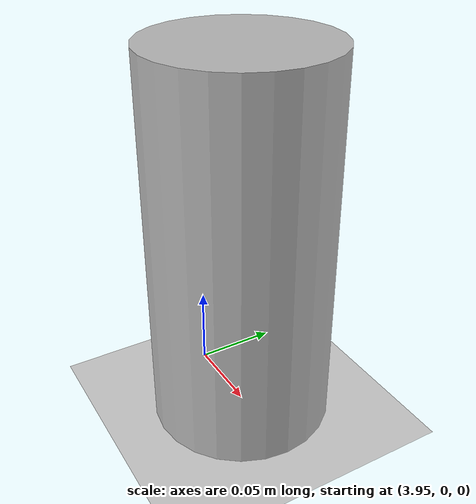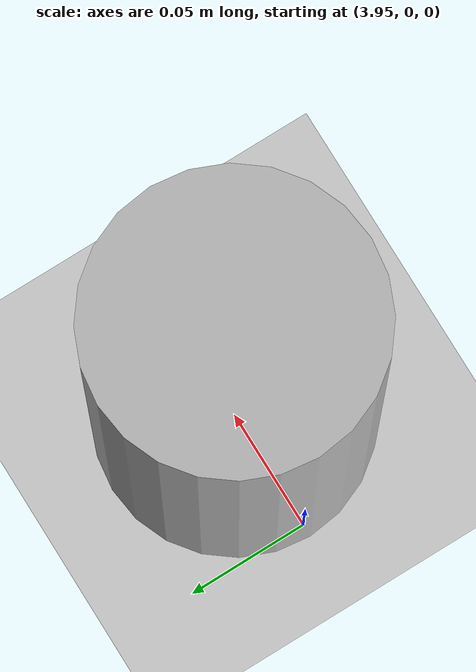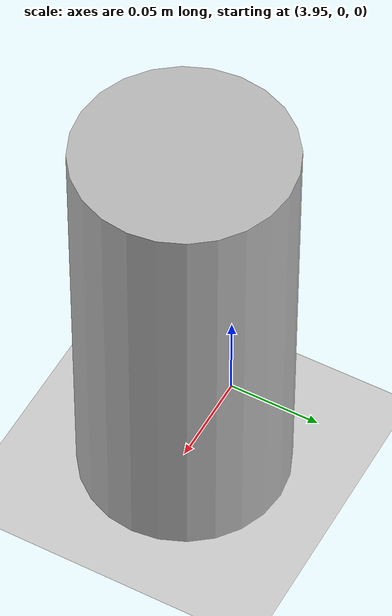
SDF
<?xml version ="1.0" ?>
<sdf version ="1.5">
    <world name ="diff_rl_world">

        <include>
            <uri>model://sun</uri>
        </include>

        <include>
            <uri>model://ground_plane</uri>
        </include>

        <include>
            <uri>model://beer</uri>
            <pose>4 0 0 0 0 0</pose>
        </include>

    </world>
</sdf>

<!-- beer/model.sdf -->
<sdf version="1.5">
  <model name="beer">
    <link name="link">
      <pose>0 0 0.115 0 0 0</pose>
      <inertial>
        <mass>0.390</mass>
        <inertia>
          <ixx>0.00058</ixx>
          <ixy>0</ixy>
          <ixz>0</ixz>
          <iyy>0.00058</iyy>
          <iyz>0</iyz>
          <izz>0.00019</izz>
        </inertia>
      </inertial>
      <collision name="collision">
        <geometry>
          <cylinder>
            <radius>0.055000</radius>
            <length>0.230000</length>
          </cylinder>
        </geometry>
      </collision>
      <visual name="visual">
        <geometry>
          <cylinder>
            <radius>0.055000</radius>
            <length>0.230000</length>
          </cylinder>
        </geometry>
        <material>
          <script>
            <uri>model://../model_source/models/beer/materials/scripts</uri>
            <uri>model://../model_source/models/beer/materials/textures</uri>
            <name>Beer/Diffuse</name>
          </script>
        </material>
      </visual>
    </link>
  </model>
</sdf>
